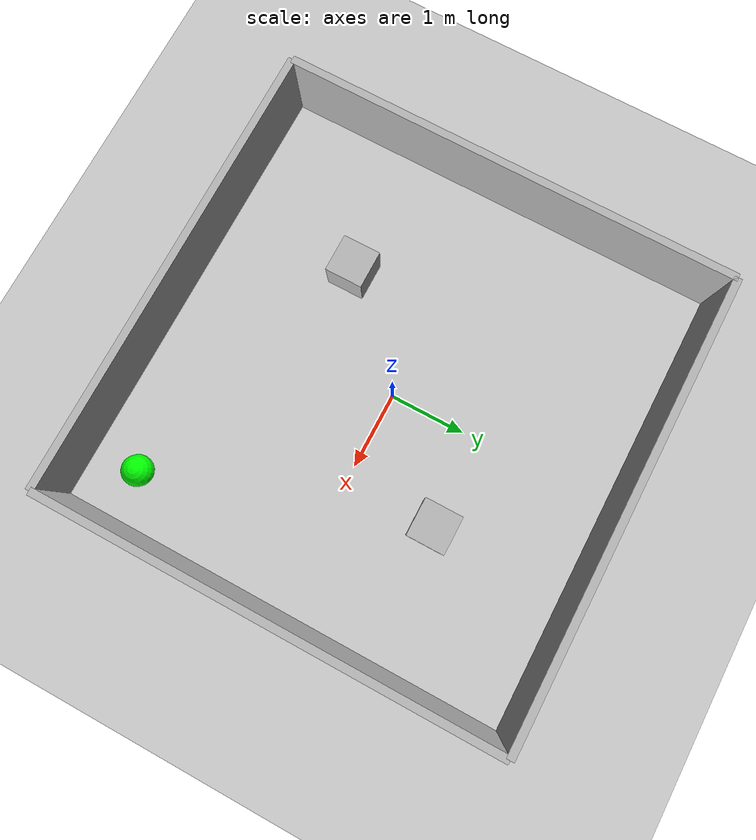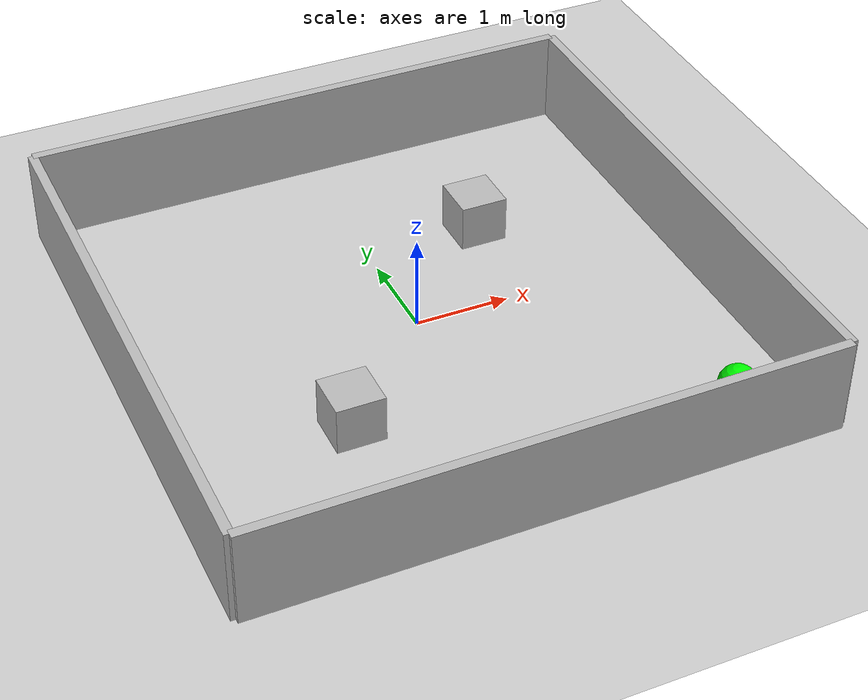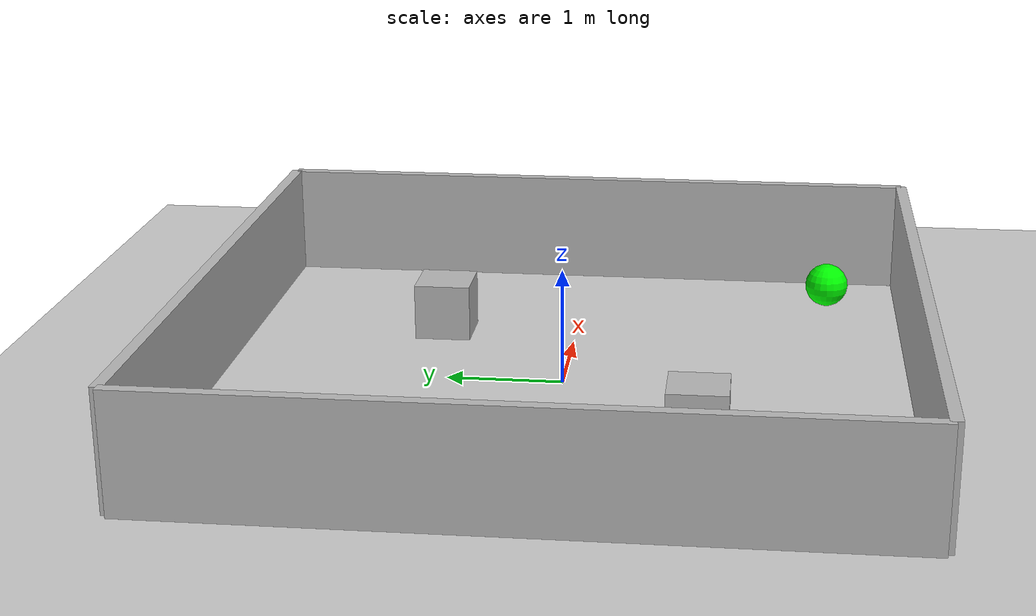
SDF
<?xml version="1.0"?>
<sdf version="1.6">
  <world name="martha_test_world_1">
    <physics name="default_physics" type="ode">
      <max_step_size>0.001</max_step_size>
      <real_time_update_rate>1000</real_time_update_rate>
      <real_time_factor>1.0</real_time_factor>
    </physics>
    <gravity>0 0 -9.81</gravity>
    <include><uri>model://sun</uri></include>
    <include><uri>model://ground_plane</uri></include>
    <plugin name="gazebo_ros_state" filename="libgazebo_ros_state.so">
      <ros><namespace>/gazebo</namespace></ros>
      <update_rate>50.0</update_rate>
    </plugin>

    <!-- Arena centered at the world origin. -->
    <model name="wall_left"><static>true</static><pose>0 3 0.5 0 0 0</pose><link name="link"><collision name="collision"><geometry><box><size>6 0.1 1</size></box></geometry></collision><visual name="visual"><geometry><box><size>6 0.1 1</size></box></geometry></visual></link></model>
    <model name="wall_right"><static>true</static><pose>0 -3 0.5 0 0 0</pose><link name="link"><collision name="collision"><geometry><box><size>6 0.1 1</size></box></geometry></collision><visual name="visual"><geometry><box><size>6 0.1 1</size></box></geometry></visual></link></model>
    <model name="wall_front"><static>true</static><pose>3 0 0.5 0 0 0</pose><link name="link"><collision name="collision"><geometry><box><size>0.1 6 1</size></box></geometry></collision><visual name="visual"><geometry><box><size>0.1 6 1</size></box></geometry></visual></link></model>
    <model name="wall_back"><static>true</static><pose>-3 0 0.5 0 0 0</pose><link name="link"><collision name="collision"><geometry><box><size>0.1 6 1</size></box></geometry></collision><visual name="visual"><geometry><box><size>0.1 6 1</size></box></geometry></visual></link></model>

    <model name="obs_1"><static>true</static><pose>1.2 1.2 0.25 0 0 0</pose><link name="link"><collision name="collision"><geometry><box><size>0.5 0.5 0.5</size></box></geometry></collision><visual name="visual"><geometry><box><size>0.5 0.5 0.5</size></box></geometry></visual></link></model>
    <model name="obs_2"><static>true</static><pose>-1.2 -1.2 0.25 0 0 0</pose><link name="link"><collision name="collision"><geometry><box><size>0.5 0.5 0.5</size></box></geometry></collision><visual name="visual"><geometry><box><size>0.5 0.5 0.5</size></box></geometry></visual></link></model>

    <model name="goal_point">
      <static>true</static><pose>2.3 -2.3 0.2 0 0 0</pose>
      <link name="link"><visual name="visual"><geometry><sphere><radius>0.2</radius></sphere></geometry><material><ambient>0 1 0 1</ambient><diffuse>0 1 0 1</diffuse></material></visual></link>
    </model>
  </world>
</sdf>
